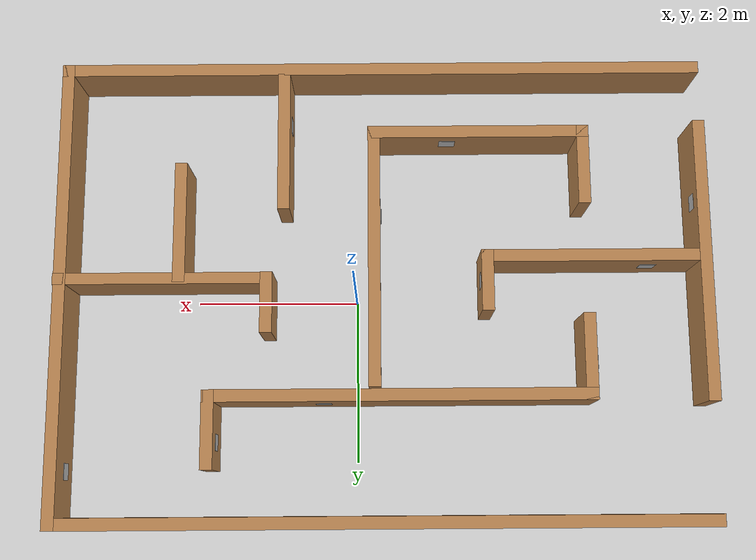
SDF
<sdf version="1.6">
 <world name="default">
  <light name="sun" type="directional">
   <pose>0 0 10 0 -0 0</pose>
   <diffuse>0.8 0.8 0.8 1</diffuse>
   <specular>0.2 0.2 0.2 1</specular>
   <attenuation>
    <range>1000</range>
    <constant>0.9</constant>
    <linear>0.01</linear>
    <quadratic>0.001</quadratic>
   </attenuation>
   <direction>-0.5 0.1 -0.9</direction>
  </light>
  <model name="ground_plane">
   <static>1</static>
   <link name="link">
    <collision name="collision">
     <geometry><plane><normal>0 0 1</normal><size>100 100</size></plane></geometry>
     <surface><friction><ode><mu>100</mu><mu2>50</mu2></ode></friction></surface>
    </collision>
    <visual name="visual">
     <cast_shadows>0</cast_shadows>
     <geometry><plane><normal>0 0 1</normal><size>100 100</size></plane></geometry>
     <material>
      <script><uri>file://media/materials/scripts/gazebo.material</uri><name>Gazebo/Grey</name></script>
     </material>
    </visual>
   </link>
  </model>
  <gravity>0 0 -9.8</gravity>
  <magnetic_field>6e-06 2.3e-05 -4.2e-05</magnetic_field>
  <atmosphere type="adiabatic"/>
  <physics name="default_physics" default="0" type="ode">
   <max_step_size>0.001</max_step_size>
   <real_time_factor>1</real_time_factor>
   <real_time_update_rate>1000</real_time_update_rate>
  </physics>
  <scene><ambient>0.4 0.4 0.4 1</ambient><background>0.7 0.7 0.7 1</background><shadows>1</shadows></scene>
  <audio><device>default</device></audio>
  <spherical_coordinates>
   <surface_model>EARTH_WGS84</surface_model>
   <latitude_deg>0</latitude_deg>
   <longitude_deg>0</longitude_deg>
   <elevation>0</elevation>
   <heading_deg>0</heading_deg>
  </spherical_coordinates>
  <model name="test2">
   <pose>-0.284755 -0.081237 0 0 -0 0</pose>
   <link name="Wall_0">
    <collision name="Wall_0_Collision">
     <geometry><box><size>3.5 0.15 0.7</size></box></geometry>
     <pose>0 0 0.35 0 -0 0</pose>
    </collision>
    <visual name="Wall_0_Visual">
     <pose>0 0 0.35 0 -0 0</pose>
     <geometry><box><size>3.5 0.15 0.7</size></box></geometry>
     <material>
      <script><uri>file://media/materials/scripts/gazebo.material</uri><name>Gazebo/Wood</name></script>
      <ambient>1 1 1 1</ambient>
     </material>
     <meta><layer>0</layer></meta>
    </visual>
    <pose>-3.985 -0.344 0 0 -0 -1.5708</pose>
   </link>
   <link name="Wall_10">
    <collision name="Wall_10_Collision">
     <geometry><box><size>3.25 0.15 0.7</size></box></geometry>
     <pose>0 0 0.35 0 -0 0</pose>
    </collision>
    <visual name="Wall_10_Visual">
     <pose>0 0 0.35 0 -0 0</pose>
     <geometry><box><size>3.25 0.15 0.7</size></box></geometry>
     <material>
      <script><uri>file://media/materials/scripts/gazebo.material</uri><name>Gazebo/Wood</name></script>
      <ambient>1 1 1 1</ambient>
     </material>
     <meta><layer>0</layer></meta>
    </visual>
    <pose>0.067 -0.418 0 0 -0 1.5708</pose>
   </link>
   <link name="Wall_12">
    <collision name="Wall_12_Collision">
     <geometry><box><size>2.75 0.15 0.7</size></box></geometry>
     <pose>0 0 0.35 0 -0 0</pose>
    </collision>
    <visual name="Wall_12_Visual">
     <pose>0 0 0.35 0 -0 0</pose>
     <geometry><box><size>2.75 0.15 0.7</size></box></geometry>
     <material>
      <script><uri>file://media/materials/scripts/gazebo.material</uri><name>Gazebo/Wood</name></script>
      <ambient>1 1 1 1</ambient>
     </material>
     <meta><layer>0</layer></meta>
    </visual>
    <pose>-2.615 -0.383 0 0 -0 0</pose>
   </link>
   <link name="Wall_13">
    <collision name="Wall_13_Collision">
     <geometry><box><size>0.75 0.15 0.7</size></box></geometry>
     <pose>0 0 0.35 0 -0 0</pose>
    </collision>
    <visual name="Wall_13_Visual">
     <pose>0 0 0.35 0 -0 0</pose>
     <geometry><box><size>0.75 0.15 0.7</size></box></geometry>
     <material>
      <script><uri>file://media/materials/scripts/gazebo.material</uri><name>Gazebo/Wood</name></script>
      <ambient>1 1 1 1</ambient>
     </material>
     <meta><layer>0</layer></meta>
    </visual>
    <pose>-1.315 -0.083 0 0 -0 1.5708</pose>
   </link>
   <link name="Wall_15">
    <collision name="Wall_15_Collision">
     <geometry><box><size>1.05283 0.15 0.7</size></box></geometry>
     <pose>0 0 0.35 0 -0 0</pose>
    </collision>
    <visual name="Wall_15_Visual">
     <pose>0 0 0.35 0 -0 0</pose>
     <geometry><box><size>1.05283 0.15 0.7</size></box></geometry>
     <material>
      <script><uri>file://media/materials/scripts/gazebo.material</uri><name>Gazebo/Wood</name></script>
      <ambient>1 1 1 1</ambient>
     </material>
     <meta><layer>0</layer></meta>
    </visual>
    <pose>-2.533 0.8555 0 0 -0 1.5708</pose>
   </link>
   <link name="Wall_16">
    <collision name="Wall_16_Collision">
     <geometry><box><size>4.75 0.15 0.7</size></box></geometry>
     <pose>0 0 0.35 0 -0 0</pose>
    </collision>
    <visual name="Wall_16_Visual">
     <pose>0 0 0.35 0 -0 0</pose>
     <geometry><box><size>4.75 0.15 0.7</size></box></geometry>
     <material>
      <script><uri>file://media/materials/scripts/gazebo.material</uri><name>Gazebo/Wood</name></script>
      <ambient>1 1 1 1</ambient>
     </material>
     <meta><layer>0</layer></meta>
    </visual>
    <pose>-0.233 1.307 0 0 -0 0</pose>
   </link>
   <link name="Wall_17">
    <collision name="Wall_17_Collision">
     <geometry><box><size>0.947166 0.15 0.7</size></box></geometry>
     <pose>0 0 0.35 0 -0 0</pose>
    </collision>
    <visual name="Wall_17_Visual">
     <pose>0 0 0.35 0 -0 0</pose>
     <geometry><box><size>0.947166 0.15 0.7</size></box></geometry>
     <material>
      <script><uri>file://media/materials/scripts/gazebo.material</uri><name>Gazebo/Wood</name></script>
      <ambient>1 1 1 1</ambient>
     </material>
     <meta><layer>0</layer></meta>
    </visual>
    <pose>2.067 1.7055 0 0 -0 1.5708</pose>
   </link>
   <link name="Wall_19">
    <collision name="Wall_19_Collision">
     <geometry><box><size>0.75 0.15 0.7</size></box></geometry>
     <pose>0 0 0.35 0 -0 0</pose>
    </collision>
    <visual name="Wall_19_Visual">
     <pose>0 0 0.35 0 -0 0</pose>
     <geometry><box><size>0.75 0.15 0.7</size></box></geometry>
     <material>
      <script><uri>file://media/materials/scripts/gazebo.material</uri><name>Gazebo/Wood</name></script>
      <ambient>1 1 1 1</ambient>
     </material>
     <meta><layer>0</layer></meta>
    </visual>
    <pose>1.385 0.174 0 0 -0 -1.5708</pose>
   </link>
   <link name="Wall_2">
    <collision name="Wall_2_Collision">
     <geometry><box><size>8 0.15 0.7</size></box></geometry>
     <pose>0 0 0.35 0 -0 0</pose>
    </collision>
    <visual name="Wall_2_Visual">
     <pose>0 0 0.35 0 -0 0</pose>
     <geometry><box><size>8 0.15 0.7</size></box></geometry>
     <material>
      <script><uri>file://media/materials/scripts/gazebo.material</uri><name>Gazebo/Wood</name></script>
      <ambient>1 1 1 1</ambient>
     </material>
     <meta><layer>0</layer></meta>
    </visual>
    <pose>-0.025 2.8 0 0 -0 0</pose>
   </link>
   <link name="Wall_22">
    <collision name="Wall_22_Collision">
     <geometry><box><size>2.6 0.14 0.7</size></box></geometry>
     <pose>0 0 0.35 0 -0 0</pose>
    </collision>
    <visual name="Wall_22_Visual">
     <pose>0 0 0.35 0 -0 0</pose>
     <geometry><box><size>2.6 0.14 0.7</size></box></geometry>
     <material>
      <script><uri>file://media/materials/scripts/gazebo.material</uri><name>Gazebo/Wood</name></script>
      <ambient>1 1 1 1</ambient>
     </material>
     <meta><layer>0</layer></meta>
    </visual>
    <pose>2.685 -0.126 0 0 -0 0</pose>
   </link>
   <link name="Wall_24">
    <collision name="Wall_24_Collision">
     <geometry><box><size>1.5 0.15 0.7</size></box></geometry>
     <pose>0 0 0.35 0 -0 0</pose>
    </collision>
    <visual name="Wall_24_Visual">
     <pose>0 0 0.35 0 -0 0</pose>
     <geometry><box><size>1.5 0.15 0.7</size></box></geometry>
     <material>
      <script><uri>file://media/materials/scripts/gazebo.material</uri><name>Gazebo/Wood</name></script>
      <ambient>1 1 1 1</ambient>
     </material>
     <meta><layer>0</layer></meta>
    </visual>
    <pose>2.452 -0.831 0 0 -0 -1.5708</pose>
   </link>
   <link name="Wall_3">
    <collision name="Wall_3_Collision">
     <geometry><box><size>5.75 0.15 0.7</size></box></geometry>
     <pose>0 0 0.35 0 -0 0</pose>
    </collision>
    <visual name="Wall_3_Visual">
     <pose>0 0 0.35 0 -0 0</pose>
     <geometry><box><size>5.75 0.15 0.7</size></box></geometry>
     <material>
      <script><uri>file://media/materials/scripts/gazebo.material</uri><name>Gazebo/Wood</name></script>
      <ambient>1 1 1 1</ambient>
     </material>
     <meta><layer>0</layer></meta>
    </visual>
    <pose>3.9 -0 0 0 -0 -1.5708</pose>
   </link>
   <link name="Wall_4">
    <collision name="Wall_4_Collision">
     <geometry><box><size>8 0.15 0.7</size></box></geometry>
     <pose>0 0 0.35 0 -0 0</pose>
    </collision>
    <visual name="Wall_4_Visual">
     <pose>0 0 0.35 0 -0 0</pose>
     <geometry><box><size>8 0.15 0.7</size></box></geometry>
     <material>
      <script><uri>file://media/materials/scripts/gazebo.material</uri><name>Gazebo/Wood</name></script>
      <ambient>1 1 1 1</ambient>
     </material>
     <meta><layer>0</layer></meta>
    </visual>
    <pose>-0.025 -2.8 0 0 -0 3.14159</pose>
   </link>
   <link name="Wall_6">
    <collision name="Wall_6_Collision">
     <geometry><box><size>1.75 0.15 0.7</size></box></geometry>
     <pose>0 0 0.35 0 -0 0</pose>
    </collision>
    <visual name="Wall_6_Visual">
     <pose>0 0 0.35 0 -0 0</pose>
     <geometry><box><size>1.75 0.15 0.7</size></box></geometry>
     <material>
      <script><uri>file://media/materials/scripts/gazebo.material</uri><name>Gazebo/Wood</name></script>
      <ambient>1 1 1 1</ambient>
     </material>
     <meta><layer>0</layer></meta>
    </visual>
    <pose>1.18355 -1.865 0 0 -0 -1.5708</pose>
   </link>
   <link name="Wall_8">
    <collision name="Wall_8_Collision">
     <geometry><box><size>1 0.15 0.7</size></box></geometry>
     <pose>0 0 0.35 0 -0 0</pose>
    </collision>
    <visual name="Wall_8_Visual">
     <pose>0 0 0.35 0 -0 0</pose>
     <geometry><box><size>1 0.15 0.7</size></box></geometry>
     <material>
      <script><uri>file://media/materials/scripts/gazebo.material</uri><name>Gazebo/Wood</name></script>
      <ambient>1 1 1 1</ambient>
     </material>
     <meta><layer>0</layer></meta>
    </visual>
    <pose>-2.533 -1.543 0 0 -0 -1.5708</pose>
   </link>
   <link name="Wall_9">
    <collision name="Wall_9_Collision">
     <geometry><box><size>2.75 0.15 0.7</size></box></geometry>
     <pose>0 0 0.35 0 -0 0</pose>
    </collision>
    <visual name="Wall_9_Visual">
     <pose>0 0 0.35 0 -0 0</pose>
     <geometry><box><size>2.75 0.15 0.7</size></box></geometry>
     <material>
      <script><uri>file://media/materials/scripts/gazebo.material</uri><name>Gazebo/Wood</name></script>
      <ambient>1 1 1 1</ambient>
     </material>
     <meta><layer>0</layer></meta>
    </visual>
    <pose>-1.233 -1.968 0 0 -0 0</pose>
   </link>
   <static>1</static>
  </model>
  <model name="Pokemon00">
   <static>1</static>
   <link name="link">
    <visual name="visual">
     <geometry><mesh><uri>model://pokemon00/meshes/Marker0.dae</uri><scale>0.4 0.4 0.4</scale></mesh></geometry>
    </visual>
   </link>
   <pose>-2.92143 0.820467 0.358864 -0.009098 -4.8e-05 -3.13279</pose>
  </model>
  <model name="Pokemon01">
   <static>1</static>
   <link name="link">
    <visual name="visual">
     <geometry><mesh><uri>model://pokemon01/meshes/Marker0.dae</uri><scale>0.4 0.4 0.4</scale></mesh></geometry>
    </visual>
   </link>
   <pose>0.974895 -2.26344 0.33751 0 -0 0</pose>
  </model>
  <model name="Pokemon02">
   <static>1</static>
   <link name="link">
    <visual name="visual">
     <geometry><mesh><uri>model://pokemon02/meshes/Marker0.dae</uri><scale>0.4 0.4 0.4</scale></mesh></geometry>
    </visual>
   </link>
   <pose>0.966898 -1.5837 0.33271 0 -0 0</pose>
  </model>
  <model name="Pokemon03">
   <static>1</static>
   <link name="link">
    <visual name="visual">
     <geometry><mesh><uri>model://pokemon03/meshes/Marker0.dae</uri><scale>0.4 0.4 0.4</scale></mesh></geometry>
    </visual>
   </link>
   <pose>-1.52674 -0.194662 0.374535 0 -0 0</pose>
  </model>
  <model name="Pokemon06">
   <static>1</static>
   <link name="link">
    <visual name="visual">
     <geometry><mesh><uri>model://pokemon06/meshes/Marker0.dae</uri><scale>0.4 0.4 0.4</scale></mesh></geometry>
    </visual>
   </link>
   <pose>-2.74684 -1.59889 0.312906 0 -0 0</pose>
  </model>
  <model name="Pokemon06_0">
   <static>1</static>
   <link name="link">
    <visual name="visual">
     <geometry><mesh><uri>model://pokemon06/meshes/Marker0.dae</uri><scale>0.4 0.4 0.4</scale></mesh></geometry>
    </visual>
   </link>
   <pose>-0.303858 -1.07664 0.260022 0 -0 0</pose>
  </model>
  <model name="Pokemon00_0">
   <static>1</static>
   <link name="link">
    <visual name="visual">
     <geometry><mesh><uri>model://pokemon09/meshes/Marker0.dae</uri><scale>0.4 0.4 0.4</scale></mesh></geometry>
    </visual>
   </link>
   <pose>-1.91285 2.64025 0.585239 -3.13618 0 1.56672</pose>
  </model>
  <model name="Pokemon08">
   <static>1</static>
   <link name="link">
    <visual name="visual">
     <geometry><mesh><uri>model://pokemon08/meshes/Marker0.dae</uri><scale>0.4 0.4 0.4</scale></mesh></geometry>
    </visual>
   </link>
   <pose>0.41267 1.29995 0.416054 3.08236 -0 -1.57743</pose>
  </model>
  <model name="Pokemon08_0">
   <static>1</static>
   <link name="link">
    <visual name="visual">
     <geometry><mesh><uri>model://pokemon08/meshes/Marker0.dae</uri><scale>0.4 0.4 0.4</scale></mesh></geometry>
    </visual>
   </link>
   <pose>3.5 2.09882  0.512982 -3.13388 0 0</pose>
  </model>
  <model name="Pokemon05">
   <static>1</static>
   <link name="link">
    <visual name="visual">
     <geometry><mesh><uri>model://pokemon05/meshes/Marker0.dae</uri><scale>0.4 0.4 0.4</scale></mesh></geometry>
    </visual>
   </link>
   <pose>1.6983 1.763 0.512982 -3.13388 0 0</pose>
  </model>
  <model name="Pokemon05_0">
   <static>1</static>
   <link name="link">
    <visual name="visual">
     <geometry><mesh><uri>model://pokemon05/meshes/Marker0.dae</uri><scale>0.4 0.4 0.4</scale></mesh></geometry>
    </visual>
   </link>
   <pose>-1.13632 -1.96897 0.354193 0 -0 1.53938</pose>
  </model>
  <model name="Pokemon02_0">
   <static>1</static>
   <link name="link">
    <visual name="visual">
     <geometry><mesh><uri>model://pokemon02/meshes/Marker0.dae</uri><scale>0.4 0.4 0.4</scale></mesh></geometry>
    </visual>
   </link>
   <pose>-3.60911 -0.386738 0.466514 -3.10458 0.003723 -1.55909</pose>
  </model>
  <model name="Pokemon07">
   <static>1</static>
   <link name="link">
    <visual name="visual">
     <geometry><mesh><uri>model://pokemon07/meshes/Marker0.dae</uri><scale>0.4 0.4 0.4</scale></mesh></geometry>
    </visual>
   </link>
   <pose>-1.05434 1.15238 0.448085 3.07658 -0.001182 1.57082</pose>
  </model>
  <model name="Pokemon03_0">
   <static>1</static>
   <link name="link">
    <visual name="visual">
     <geometry><mesh><uri>model://pokemon03/meshes/Marker0.dae</uri><scale>0.4 0.4 0.4</scale></mesh></geometry>
    </visual>
   </link>
   <pose>-4.19524 -1.18075 0.339867 0 -0 0</pose>
  </model>
  <model name="Pokemon02_1">
   <static>1</static>
   <link name="link">
    <visual name="visual">
     <geometry><mesh><uri>model://pokemon02/meshes/Marker0.dae</uri><scale>0.4 0.4 0.4</scale></mesh></geometry>
    </visual>
   </link>
   <pose>-3.23919 -0.542056 0.399797 0 0 -1.58803</pose>
  </model>
  <model name="Pokemon00_1">
   <static>1</static>
   <link name="link">
    <visual name="visual">
     <geometry><mesh><uri>model://pokemon09/meshes/Marker0.dae</uri><scale>0.4 0.4 0.4</scale></mesh></geometry>
    </visual>
   </link>
   <pose>0.817555 -2.23161 0.488077 3.13347 -0 0</pose>
  </model>
  <model name="Pokemon06_1">
   <static>1</static>
   <link name="link">
    <visual name="visual">
     <geometry><mesh><uri>model://pokemon06/meshes/Marker0.dae</uri><scale>0.4 0.4 0.4</scale></mesh></geometry>
    </visual>
   </link>
   <pose>-2.4127 -2.12521 0.502941 3.12351 0.004652 1.59028</pose>
  </model>
 </world>
</sdf>
